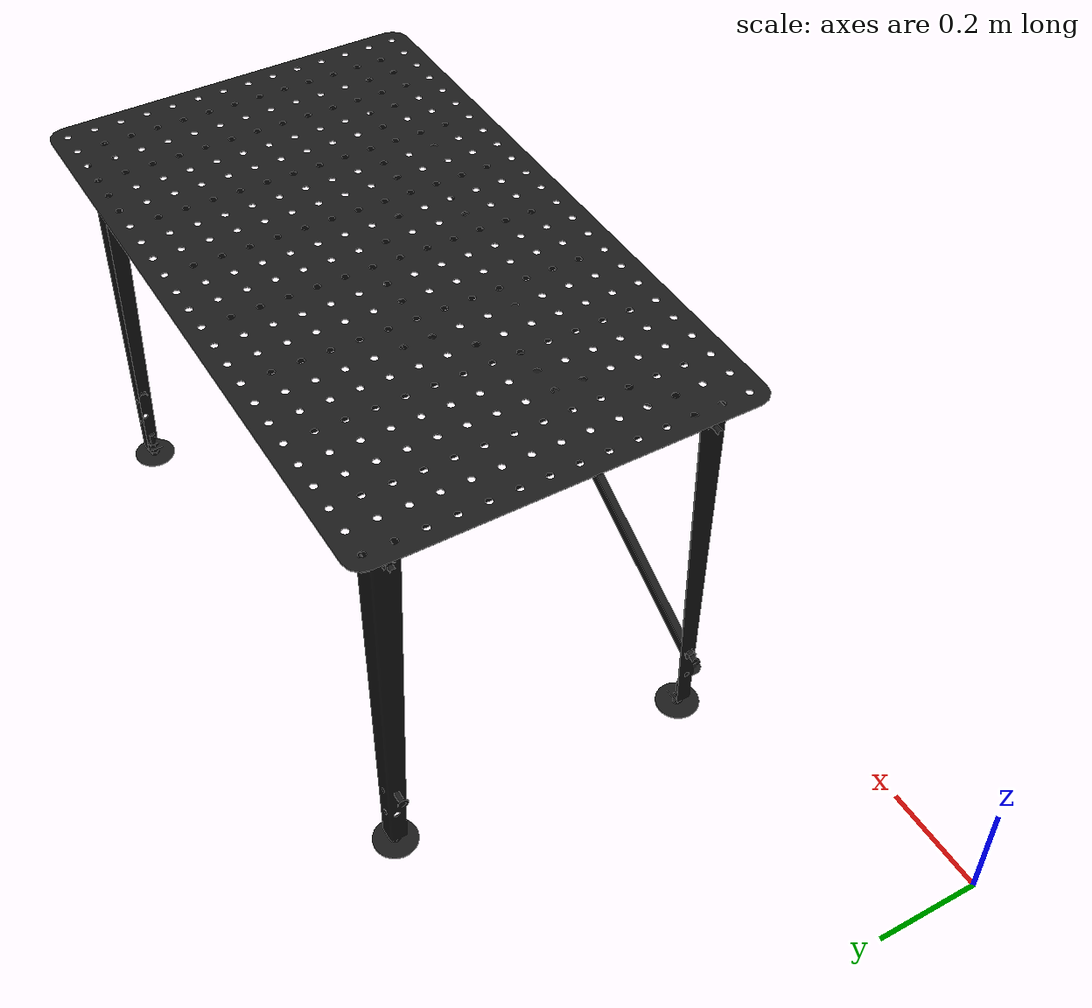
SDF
<?xml version="1.0" ?>
<sdf version="1.6">
  <model name="weld_table">

    <static>true</static>
    <pose>1.1 0.5 0 0 0 0</pose>

    <link name="weld_table_link">

      <visual name="visual">
        <geometry>
          <mesh>
            <uri>model://weld_table/meshes/weld_table.STL</uri>
          </mesh>
        </geometry>
        <material>
          <ambient>0.1 0.1 0.1 1.0</ambient>
          <diffuse>0.1 0.1 0.1 1.0</diffuse>
          <specular>1.0 1.0 1.0 1.0</specular>
        </material>
      </visual>

      <collision name="collision">
        <geometry>
          <mesh>
            <uri>model://weld_table/meshes/weld_table.STL</uri>
          </mesh>
        </geometry>
      </collision>

    </link>

  </model>
</sdf>
